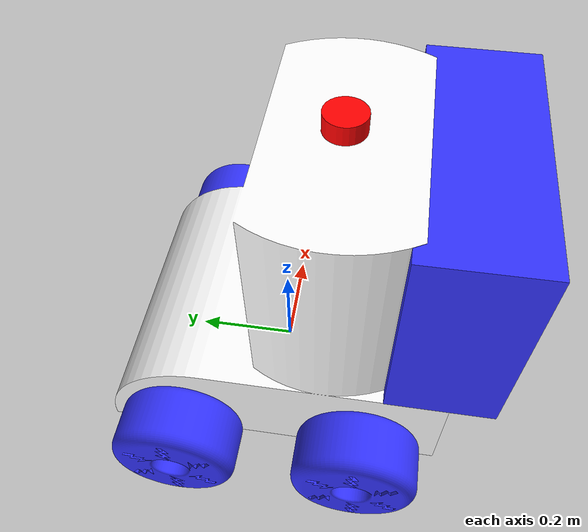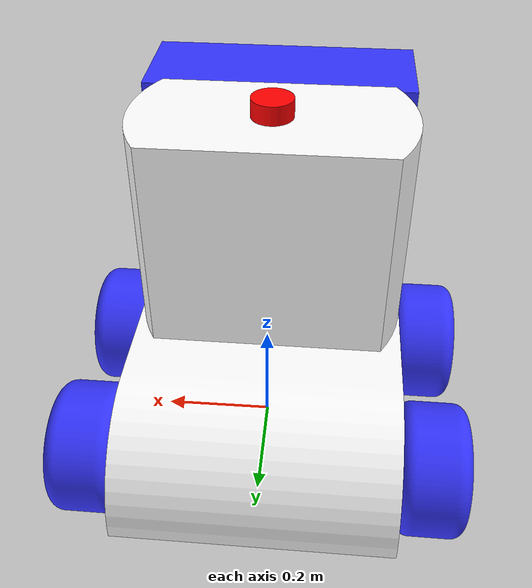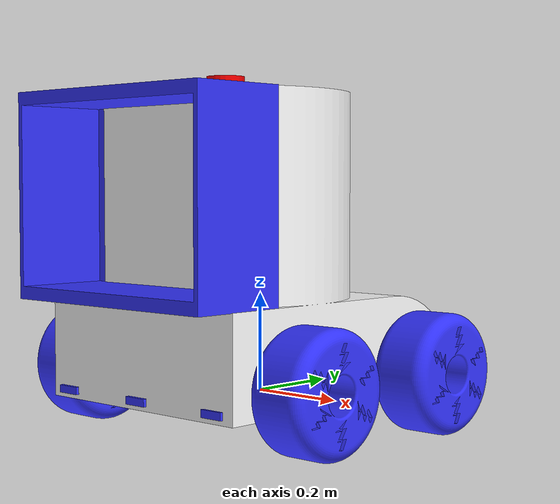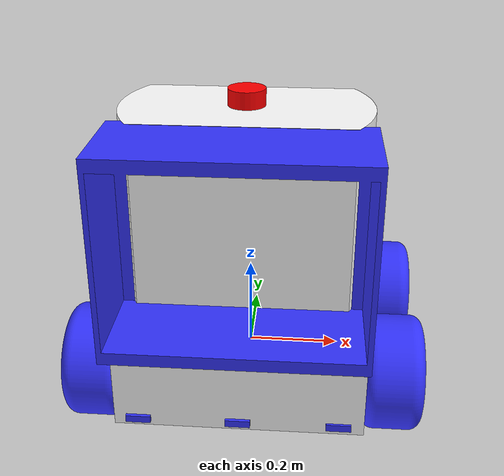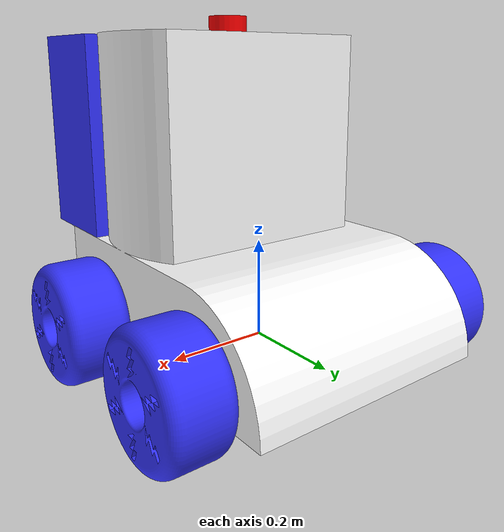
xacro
<?xml version="1.0"?>
<robot xmlns:xacro="http://www.ros.org/wiki/xacro"  name="robot">

    <xacro:include filename="robot_core.xacro" />
    <xacro:include filename="gazebo_control.xacro" />
    <xacro:include filename="lidar.xacro" />
    <xacro:include filename="arm_tr.xacro" />

    <ros2_control name="gripper_robot_gazebo_system" type="system">
        <hardware>
            <plugin>gazebo_ros2_control/GazeboSystem</plugin>
        </hardware>
        <xacro:arm_tr/>
    </ros2_control>
    <xacro:robot_controller/>

</robot>

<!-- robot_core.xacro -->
<robot xmlns:xacro="http://www.ros.org/wiki/xacro" >
<xacro:include filename="inertial_macros.xacro" />

    <material name="white">
        <color rgba="1 1 1 1" />
    </material>

    <material name="orange">
        <color rgba="1 0.3 0.1 1"/>
    </material>

    <material name="blue">
        <color rgba="0.2 0.2 1 1"/>
    </material>

    <material name="black">
        <color rgba="0 0 0 1"/>
    </material>

    <material name="red">
        <color rgba="1 0 0 1"/>
    </material>

    <!-- BASE LINK -->

    <link name="base_link">

    </link>

     <!-- BASE_FOOTPRINT LINK -->

    <joint name="base_footprint_joint" type="fixed">
        <parent link="base_link"/>
        <child link="base_footprint"/>
        <origin xyz="0 0 0" rpy="0 0 0"/>
    </joint>

    <link name="base_footprint">
    </link>

    <joint name="chassis_joint" type="fixed">
        <parent link="base_link"/>
        <child link="chassis"/>
        <origin xyz="0 0 0"/>
    </joint>

    <link name="chassis">
    <visual>
        <origin xyz="0 0 0" rpy="0 0 0"/>
        <geometry>
            <mesh filename="file:///home/kaow/carkaow_ws/src/articubot_one/description/carkaow2.dae" scale =" 0.5 0.5 0.5"/>
        </geometry>
        <material name="white"/>
    </visual>
    <collision>
        <geometry>
            <mesh filename="file:///home/kaow/carkaow_ws/src/articubot_one/description/carkaow2.dae" scale =" 0.5 0.5 0.5"/>
        </geometry>
    </collision>
    <xacro:inertial_box mass="0.5" x="0.3" y="0.3" z="0.15">
            <origin xyz="0 0 0" rpy="0 0 0"/>
        </xacro:inertial_box>
    </link>

    <gazebo reference="chassis">
        <material>Gazebo/White</material>
    </gazebo>

    <!-- FRONT LEFT WHEEL -->

    <joint name="front_left_wheel_joint" type="continuous">
        <parent link="base_link"/>
        <child link="front_left_wheel"/>
        <origin xyz="0.31 -0.18 0.05" rpy="-${pi/2} 0 0"/>
        <axis xyz="1 0 0"/>
    </joint>

    <link name="front_left_wheel">
        <visual>
            <geometry>
                <mesh filename="file:///home/kaow/carkaow_ws/src/articubot_one/description/wheel1.dae" scale =" 0.5 0.5 0.5"/>
            </geometry>
            <material name="blue"/>
        </visual>
        <collision>
            <geometry>
                <mesh filename="file:///home/kaow/carkaow_ws/src/articubot_one/description/wheel1.dae" scale =" 0.5 0.5 0.5"/>
            </geometry>
        </collision>
        <xacro:inertial_cylinder mass="0.1" length="0.05" radius="0.05">
            <origin xyz="0 0 0" rpy="0 0 0"/>
        </xacro:inertial_cylinder>
    </link>

    <!-- BACK LEFT WHEEL -->

    <joint name="back_left_wheel_joint" type="continuous">
        <parent link="base_link"/>
        <child link="back_left_wheel"/>
        <origin xyz="0.31 0.17 0.05" rpy="-${pi/2} 0 0"/>
        <axis xyz="1 0 0"/>
    </joint>

    <link name="back_left_wheel">
        <visual>
            <geometry>
                <mesh filename="file:///home/kaow/carkaow_ws/src/articubot_one/description/wheel1.dae" scale =" 0.5 0.5 0.5"/>
            </geometry>
            <material name="blue"/>
        </visual>
        <collision>
            <geometry>
                <mesh filename="file:///home/kaow/carkaow_ws/src/articubot_one/description/wheel1.dae" scale =" 0.5 0.5 0.5"/>
            </geometry>
        </collision>
        <xacro:inertial_cylinder mass="0.1" length="0.05" radius="0.05">
            <origin xyz="0 0 0" rpy="0 0 0"/>
        </xacro:inertial_cylinder>
    </link>

    <!-- FRONT RIGHT WHEEL -->

    <joint name="front_right_wheel_joint" type="continuous">
        <parent link="base_link"/>
        <child link="front_right_wheel"/>
        <origin xyz="-0.31 -0.18 0.05" rpy="-${pi/2} 0 0"/>
        <axis xyz="1 0 0"/>
    </joint>

    <link name="front_right_wheel">
        <visual>
            <geometry>
                <mesh filename="file:///home/kaow/carkaow_ws/src/articubot_one/description/wheel1.dae" scale =" 0.5 0.5 0.5"/>
            </geometry>
            <material name="blue"/>
        </visual>
        <collision>
            <geometry>
                <mesh filename="file:///home/kaow/carkaow_ws/src/articubot_one/description/wheel1.dae" scale =" 0.5 0.5 0.5"/>
            </geometry>
        </collision>
        <xacro:inertial_cylinder mass="0.1" length="0.05" radius="0.05">
            <origin xyz="0 0 0" rpy="0 0 0"/>
        </xacro:inertial_cylinder>
    </link>

    <!-- BACK RIGHT WHEEL -->

    <joint name="back_right_wheel_joint" type="continuous">
        <parent link="base_link"/>
        <child link="back_right_wheel"/>
        <origin xyz="-0.31 0.17 0.05" rpy="-${pi/2} 0 0"/>
        <axis xyz="1 0 0"/>
    </joint>

    <link name="back_right_wheel">
        <visual>
            <geometry>
                <mesh filename="file:///home/kaow/carkaow_ws/src/articubot_one/description/wheel1.dae" scale =" 0.5 0.5 0.5"/>
            </geometry>
            <material name="blue"/>
        </visual>
        <collision>
            <geometry>
                <mesh filename="file:///home/kaow/carkaow_ws/src/articubot_one/description/wheel1.dae" scale =" 0.5 0.5 0.5"/>
            </geometry>
        </collision>
        <xacro:inertial_cylinder mass="0.1" length="0.05" radius="0.05">
            <origin xyz="0 0 0" rpy="0 0 0"/>
        </xacro:inertial_cylinder>
    </link>

    <!-- GRIPPER -->

    <joint name="gripper_joint" type="revolute">
        <parent link="base_link"/>
        <child link="gripper"/>
        <origin xyz="0 -0.34 0.01" rpy="-${pi/2} 0 0"/>
        <axis xyz="1 0 0"/>
        <limit lower="1.57" upper="-0.052" effort="10" velocity="1"/>
        <dynamics damping="1" friction="1"/>
    </joint>

    <link name="gripper">
        <visual>
            <geometry>
                <mesh filename="file:///home/kaow/carkaow_ws/src/articubot_one/description/tapoo1.dae" scale =" 0.5 0.5 0.5"/>
            </geometry>
            <material name="blue"/>
        </visual>
        <collision>
            <geometry>
                <mesh filename="file:///home/kaow/carkaow_ws/src/articubot_one/description/tapoo1.dae" scale =" 0.5 0.5 0.5"/>
            </geometry>
        </collision>
        <xacro:inertial_cylinder mass="0.1" length="0.05" radius="0.05">
            <origin xyz="0 0 0" rpy="0 0 0"/>
        </xacro:inertial_cylinder>
    </link>

</robot>

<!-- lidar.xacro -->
<robot xmlns:xacro="http://www.ros.org/wiki/xacro" >

    <joint name="laser_joint" type="fixed">
        <parent link="chassis"/>
        <child link="laser_frame"/>
        <origin xyz="0 -0.1 0.61" rpy="0 0 0"/>
    </joint>

    <link name="laser_frame">
        <visual>
            <geometry>
                <cylinder radius="0.0375" length="0.05"/>
            </geometry>
            <material name="red"/>
        </visual>
        <collision>
            <geometry>
                <cylinder radius="0.0375" length="0.05"/>
            </geometry>
        </collision>
        <xacro:inertial_cylinder mass="0.1" length="0.05" radius="0.0375">
            <origin xyz="0 0 0" rpy="0 0 0"/>
        </xacro:inertial_cylinder>
    </link>

    <gazebo reference="laser_frame">
        <material>Gazebo/Red</material>

        <sensor name="laser" type="ray">
            <pose> 0 0 0 0 0 0 </pose>
            <visualize>true</visualize>
            <update_rate>10</update_rate>
            <ray>
                <scan>
                    <horizontal>
                        <samples>360</samples>
                        <min_angle>-3.14</min_angle>
                        <max_angle>3.14</max_angle>
                    </horizontal>
                </scan>
                <range>
                    <min>0.15</min>
                    <max>12</max>
                </range>
            </ray>

            <plugin name="laser_controller" filename="libgazebo_ros_ray_sensor.so">
                <ros>
                    <argument>~/out:=scan</argument>
                </ros>
                <output_type>sensor_msgs/LaserScan</output_type>
                <frame_name>laser_frame</frame_name>
            </plugin>
        </sensor>
    </gazebo>

</robot>
